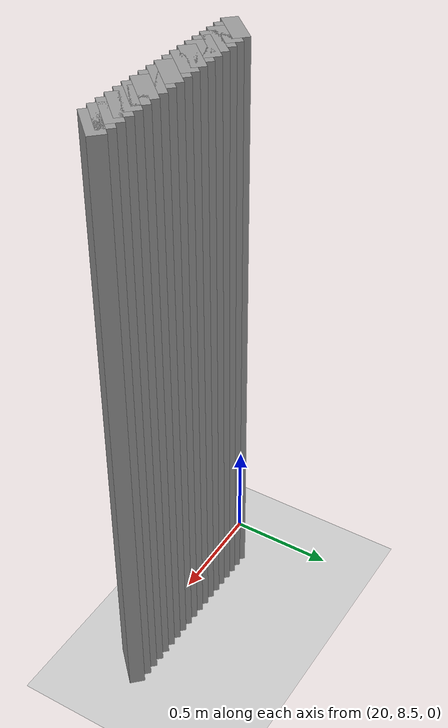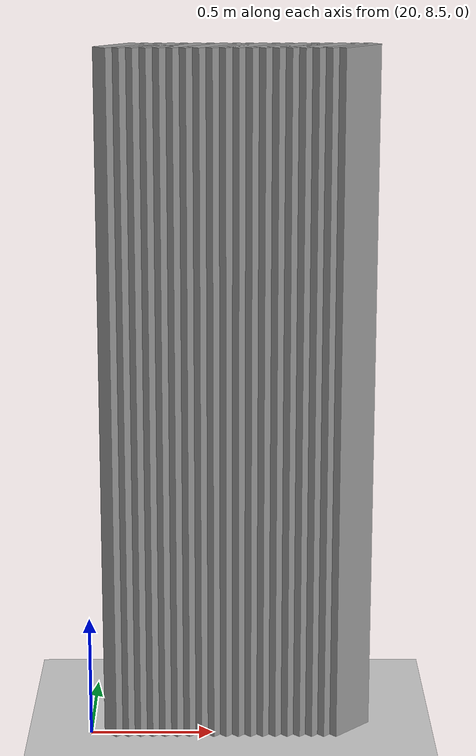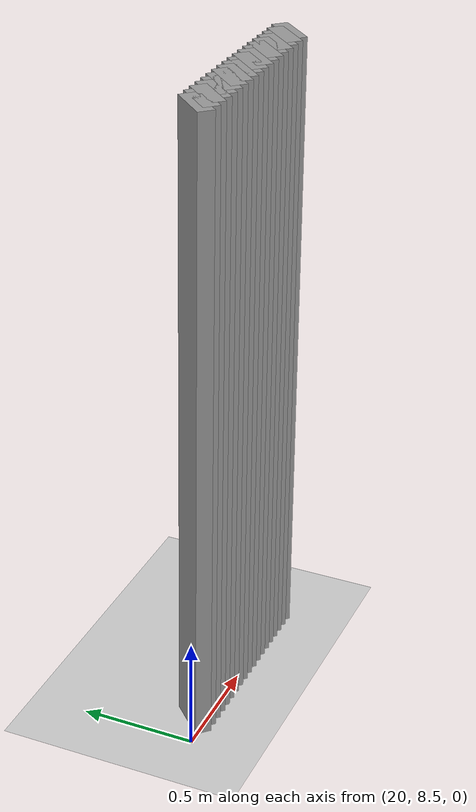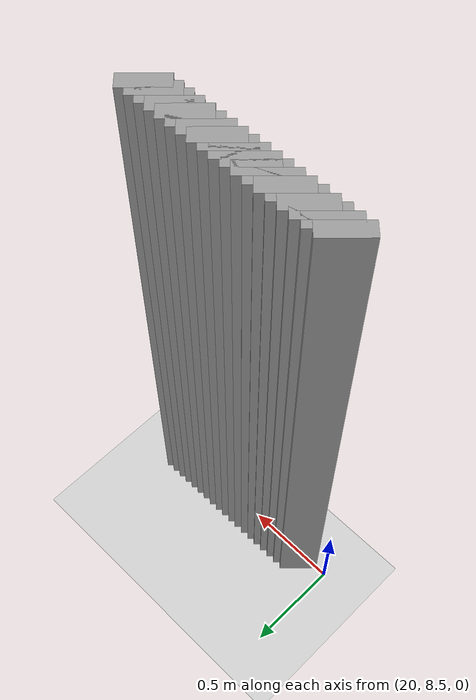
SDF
<sdf version="1.5">
 <world name="default">
  <include><uri>model://ground_plane</uri></include>
  <include><uri>model://sun</uri></include>
  <model name="grey_wall_3978">
   <static>1</static>
   <link name="link">
    <pose>20.15 8.55  1.4 0 0 -0.785398163397</pose>
    <collision name="collision"><geometry><box><size>0.0707106781187 .2  2.8</size></box></geometry></collision>
    <visual name="visual">
     <cast_shadows>0</cast_shadows>
     <geometry><box><size>0.0707106781187 .2  2.8</size></box></geometry>
     <material>
      <script>
       <uri>model://grey_wall/materials/scripts</uri>
       <uri>model://grey_wall/materials/textures</uri>
       <name>vrc/grey_wall</name>
      </script>
     </material>
    </visual>
   </link>
  </model>
  <model name="grey_wall_3979">
   <static>1</static>
   <link name="link">
    <pose>20.2 8.55  1.4 0 0 -0.785398163397</pose>
    <collision name="collision"><geometry><box><size>0.0707106781187 .2  2.8</size></box></geometry></collision>
    <visual name="visual">
     <cast_shadows>0</cast_shadows>
     <geometry><box><size>0.0707106781187 .2  2.8</size></box></geometry>
     <material>
      <script>
       <uri>model://grey_wall/materials/scripts</uri>
       <uri>model://grey_wall/materials/textures</uri>
       <name>vrc/grey_wall</name>
      </script>
     </material>
    </visual>
   </link>
  </model>
  <model name="grey_wall_3980">
   <static>1</static>
   <link name="link">
    <pose>20.25 8.55  1.4 0 0 -0.785398163397</pose>
    <collision name="collision"><geometry><box><size>0.0707106781187 .2  2.8</size></box></geometry></collision>
    <visual name="visual">
     <cast_shadows>0</cast_shadows>
     <geometry><box><size>0.0707106781187 .2  2.8</size></box></geometry>
     <material>
      <script>
       <uri>model://grey_wall/materials/scripts</uri>
       <uri>model://grey_wall/materials/textures</uri>
       <name>vrc/grey_wall</name>
      </script>
     </material>
    </visual>
   </link>
  </model>
  <model name="grey_wall_3981">
   <static>1</static>
   <link name="link">
    <pose>20.3 8.55  1.4 0 0 -0.785398163397</pose>
    <collision name="collision"><geometry><box><size>0.0707106781187 .2  2.8</size></box></geometry></collision>
    <visual name="visual">
     <cast_shadows>0</cast_shadows>
     <geometry><box><size>0.0707106781187 .2  2.8</size></box></geometry>
     <material>
      <script>
       <uri>model://grey_wall/materials/scripts</uri>
       <uri>model://grey_wall/materials/textures</uri>
       <name>vrc/grey_wall</name>
      </script>
     </material>
    </visual>
   </link>
  </model>
  <model name="grey_wall_3982">
   <static>1</static>
   <link name="link">
    <pose>20.35 8.55  1.4 0 0 -0.785398163397</pose>
    <collision name="collision"><geometry><box><size>0.0707106781187 .2  2.8</size></box></geometry></collision>
    <visual name="visual">
     <cast_shadows>0</cast_shadows>
     <geometry><box><size>0.0707106781187 .2  2.8</size></box></geometry>
     <material>
      <script>
       <uri>model://grey_wall/materials/scripts</uri>
       <uri>model://grey_wall/materials/textures</uri>
       <name>vrc/grey_wall</name>
      </script>
     </material>
    </visual>
   </link>
  </model>
  <model name="grey_wall_3983">
   <static>1</static>
   <link name="link">
    <pose>20.4 8.55  1.4 0 0 -0.785398163397</pose>
    <collision name="collision"><geometry><box><size>0.0707106781187 .2  2.8</size></box></geometry></collision>
    <visual name="visual">
     <cast_shadows>0</cast_shadows>
     <geometry><box><size>0.0707106781187 .2  2.8</size></box></geometry>
     <material>
      <script>
       <uri>model://grey_wall/materials/scripts</uri>
       <uri>model://grey_wall/materials/textures</uri>
       <name>vrc/grey_wall</name>
      </script>
     </material>
    </visual>
   </link>
  </model>
  <model name="grey_wall_3984">
   <static>1</static>
   <link name="link">
    <pose>20.45 8.55  1.4 0 0 -0.785398163397</pose>
    <collision name="collision"><geometry><box><size>0.0707106781187 .2  2.8</size></box></geometry></collision>
    <visual name="visual">
     <cast_shadows>0</cast_shadows>
     <geometry><box><size>0.0707106781187 .2  2.8</size></box></geometry>
     <material>
      <script>
       <uri>model://grey_wall/materials/scripts</uri>
       <uri>model://grey_wall/materials/textures</uri>
       <name>vrc/grey_wall</name>
      </script>
     </material>
    </visual>
   </link>
  </model>
  <model name="grey_wall_3985">
   <static>1</static>
   <link name="link">
    <pose>20.5 8.55  1.4 0 0 -0.785398163397</pose>
    <collision name="collision"><geometry><box><size>0.0707106781187 .2  2.8</size></box></geometry></collision>
    <visual name="visual">
     <cast_shadows>0</cast_shadows>
     <geometry><box><size>0.0707106781187 .2  2.8</size></box></geometry>
     <material>
      <script>
       <uri>model://grey_wall/materials/scripts</uri>
       <uri>model://grey_wall/materials/textures</uri>
       <name>vrc/grey_wall</name>
      </script>
     </material>
    </visual>
   </link>
  </model>
  <model name="grey_wall_3986">
   <static>1</static>
   <link name="link">
    <pose>20.55 8.55  1.4 0 0 -0.785398163397</pose>
    <collision name="collision"><geometry><box><size>0.0707106781187 .2  2.8</size></box></geometry></collision>
    <visual name="visual">
     <cast_shadows>0</cast_shadows>
     <geometry><box><size>0.0707106781187 .2  2.8</size></box></geometry>
     <material>
      <script>
       <uri>model://grey_wall/materials/scripts</uri>
       <uri>model://grey_wall/materials/textures</uri>
       <name>vrc/grey_wall</name>
      </script>
     </material>
    </visual>
   </link>
  </model>
  <model name="grey_wall_3987">
   <static>1</static>
   <link name="link">
    <pose>20.6 8.55  1.4 0 0 -0.785398163397</pose>
    <collision name="collision"><geometry><box><size>0.0707106781187 .2  2.8</size></box></geometry></collision>
    <visual name="visual">
     <cast_shadows>0</cast_shadows>
     <geometry><box><size>0.0707106781187 .2  2.8</size></box></geometry>
     <material>
      <script>
       <uri>model://grey_wall/materials/scripts</uri>
       <uri>model://grey_wall/materials/textures</uri>
       <name>vrc/grey_wall</name>
      </script>
     </material>
    </visual>
   </link>
  </model>
  <model name="grey_wall_3988">
   <static>1</static>
   <link name="link">
    <pose>20.65 8.55  1.4 0 0 -0.785398163397</pose>
    <collision name="collision"><geometry><box><size>0.0707106781187 .2  2.8</size></box></geometry></collision>
    <visual name="visual">
     <cast_shadows>0</cast_shadows>
     <geometry><box><size>0.0707106781187 .2  2.8</size></box></geometry>
     <material>
      <script>
       <uri>model://grey_wall/materials/scripts</uri>
       <uri>model://grey_wall/materials/textures</uri>
       <name>vrc/grey_wall</name>
      </script>
     </material>
    </visual>
   </link>
  </model>
  <model name="grey_wall_3989">
   <static>1</static>
   <link name="link">
    <pose>20.7 8.55  1.4 0 0 -0.785398163397</pose>
    <collision name="collision"><geometry><box><size>0.0707106781187 .2  2.8</size></box></geometry></collision>
    <visual name="visual">
     <cast_shadows>0</cast_shadows>
     <geometry><box><size>0.0707106781187 .2  2.8</size></box></geometry>
     <material>
      <script>
       <uri>model://grey_wall/materials/scripts</uri>
       <uri>model://grey_wall/materials/textures</uri>
       <name>vrc/grey_wall</name>
      </script>
     </material>
    </visual>
   </link>
  </model>
  <model name="grey_wall_3990">
   <static>1</static>
   <link name="link">
    <pose>20.75 8.55  1.4 0 0 -0.785398163397</pose>
    <collision name="collision"><geometry><box><size>0.0707106781187 .2  2.8</size></box></geometry></collision>
    <visual name="visual">
     <cast_shadows>0</cast_shadows>
     <geometry><box><size>0.0707106781187 .2  2.8</size></box></geometry>
     <material>
      <script>
       <uri>model://grey_wall/materials/scripts</uri>
       <uri>model://grey_wall/materials/textures</uri>
       <name>vrc/grey_wall</name>
      </script>
     </material>
    </visual>
   </link>
  </model>
  <model name="grey_wall_3991">
   <static>1</static>
   <link name="link">
    <pose>20.8 8.55  1.4 0 0 -0.785398163397</pose>
    <collision name="collision"><geometry><box><size>0.0707106781187 .2  2.8</size></box></geometry></collision>
    <visual name="visual">
     <cast_shadows>0</cast_shadows>
     <geometry><box><size>0.0707106781187 .2  2.8</size></box></geometry>
     <material>
      <script>
       <uri>model://grey_wall/materials/scripts</uri>
       <uri>model://grey_wall/materials/textures</uri>
       <name>vrc/grey_wall</name>
      </script>
     </material>
    </visual>
   </link>
  </model>
  <model name="grey_wall_3992">
   <static>1</static>
   <link name="link">
    <pose>20.85 8.55  1.4 0 0 -0.785398163397</pose>
    <collision name="collision"><geometry><box><size>0.0707106781187 .2  2.8</size></box></geometry></collision>
    <visual name="visual">
     <cast_shadows>0</cast_shadows>
     <geometry><box><size>0.0707106781187 .2  2.8</size></box></geometry>
     <material>
      <script>
       <uri>model://grey_wall/materials/scripts</uri>
       <uri>model://grey_wall/materials/textures</uri>
       <name>vrc/grey_wall</name>
      </script>
     </material>
    </visual>
   </link>
  </model>
  <model name="grey_wall_3993">
   <static>1</static>
   <link name="link">
    <pose>20.9 8.55  1.4 0 0 -0.785398163397</pose>
    <collision name="collision"><geometry><box><size>0.0707106781187 .2  2.8</size></box></geometry></collision>
    <visual name="visual">
     <cast_shadows>0</cast_shadows>
     <geometry><box><size>0.0707106781187 .2  2.8</size></box></geometry>
     <material>
      <script>
       <uri>model://grey_wall/materials/scripts</uri>
       <uri>model://grey_wall/materials/textures</uri>
       <name>vrc/grey_wall</name>
      </script>
     </material>
    </visual>
   </link>
  </model>
  <model name="grey_wall_3994">
   <static>1</static>
   <link name="link">
    <pose>20.95 8.55  1.4 0 0 -0.785398163397</pose>
    <collision name="collision"><geometry><box><size>0.0707106781187 .2  2.8</size></box></geometry></collision>
    <visual name="visual">
     <cast_shadows>0</cast_shadows>
     <geometry><box><size>0.0707106781187 .2  2.8</size></box></geometry>
     <material>
      <script>
       <uri>model://grey_wall/materials/scripts</uri>
       <uri>model://grey_wall/materials/textures</uri>
       <name>vrc/grey_wall</name>
      </script>
     </material>
    </visual>
   </link>
  </model>
  <model name="grey_wall_3995">
   <static>1</static>
   <link name="link">
    <pose>21.0 8.55  1.4 0 0 -0.785398163397</pose>
    <collision name="collision"><geometry><box><size>0.0707106781187 .2  2.8</size></box></geometry></collision>
    <visual name="visual">
     <cast_shadows>0</cast_shadows>
     <geometry><box><size>0.0707106781187 .2  2.8</size></box></geometry>
     <material>
      <script>
       <uri>model://grey_wall/materials/scripts</uri>
       <uri>model://grey_wall/materials/textures</uri>
       <name>vrc/grey_wall</name>
      </script>
     </material>
    </visual>
   </link>
  </model>
  <model name="grey_wall_3996">
   <static>1</static>
   <link name="link">
    <pose>21.05 8.55  1.4 0 0 -0.785398163397</pose>
    <collision name="collision"><geometry><box><size>0.0707106781187 .2  2.8</size></box></geometry></collision>
    <visual name="visual">
     <cast_shadows>0</cast_shadows>
     <geometry><box><size>0.0707106781187 .2  2.8</size></box></geometry>
     <material>
      <script>
       <uri>model://grey_wall/materials/scripts</uri>
       <uri>model://grey_wall/materials/textures</uri>
       <name>vrc/grey_wall</name>
      </script>
     </material>
    </visual>
   </link>
  </model>
 </world>
</sdf>
